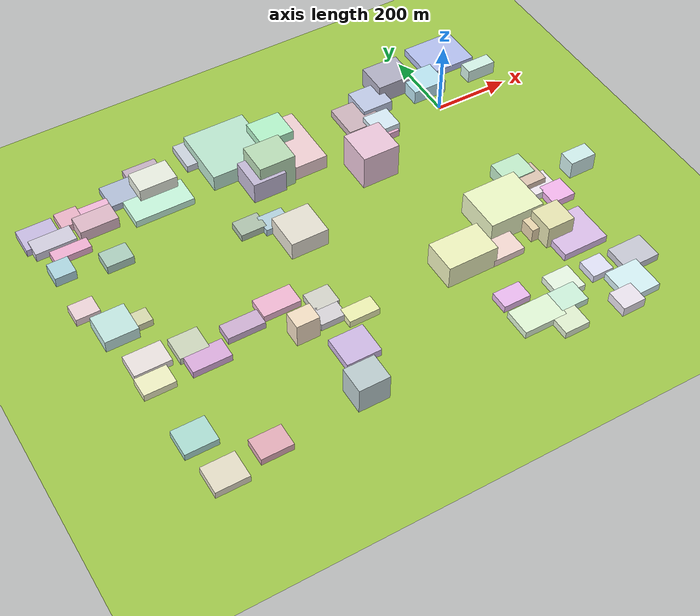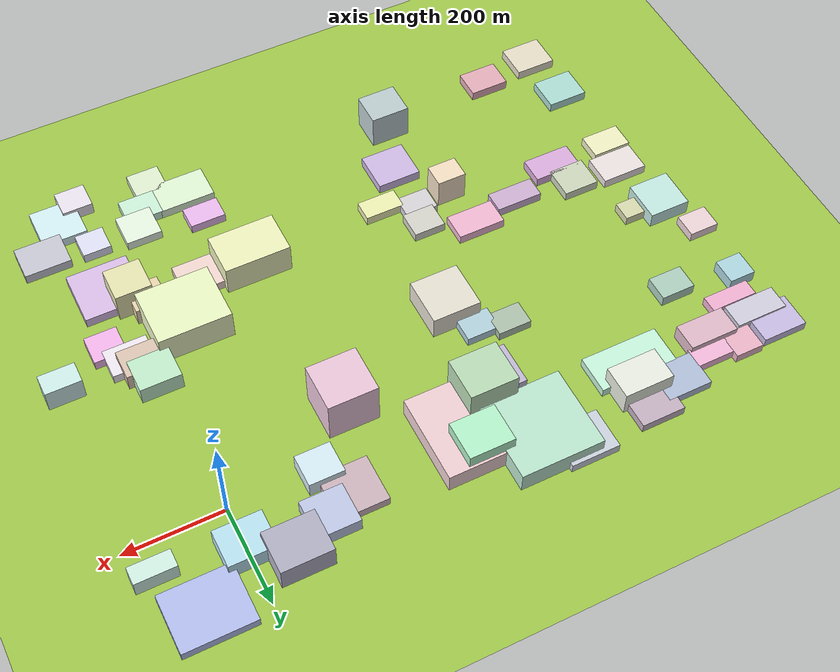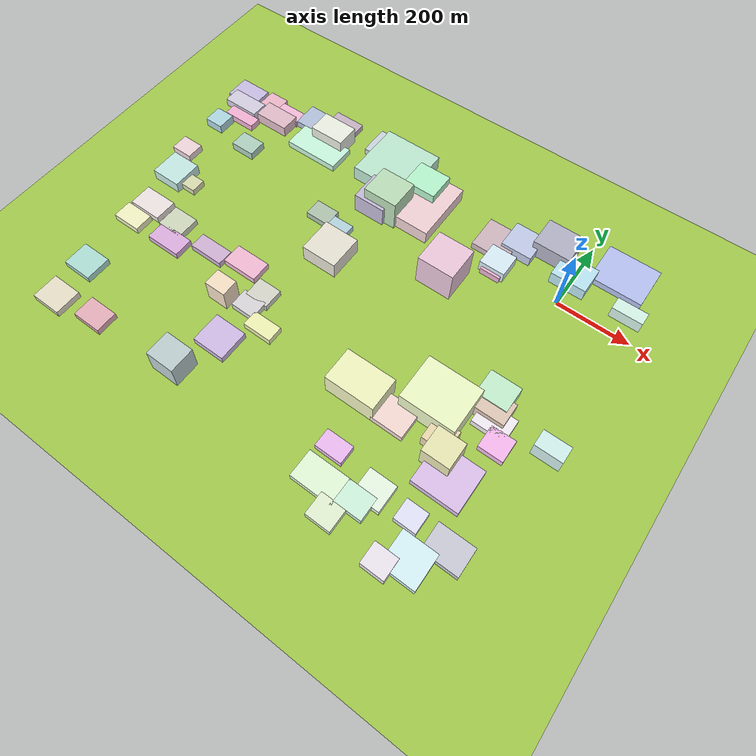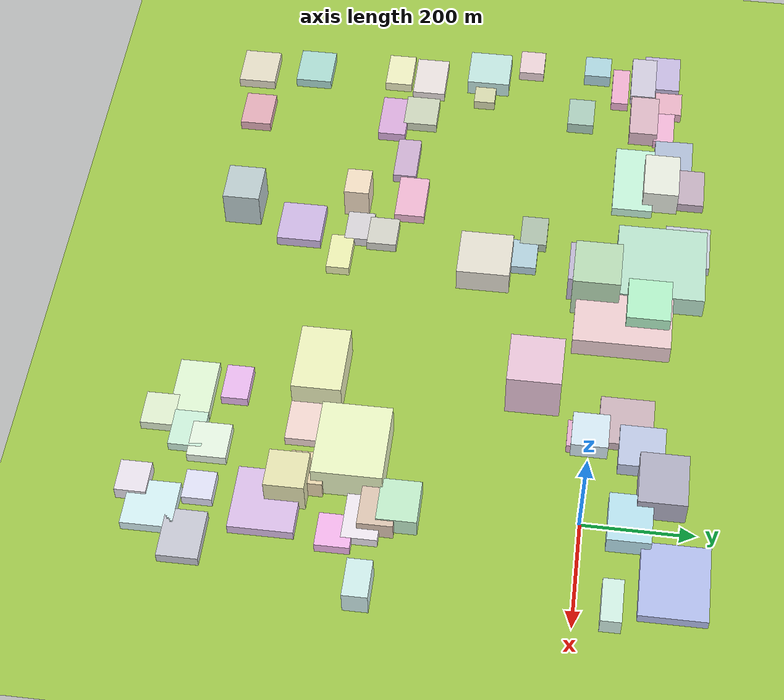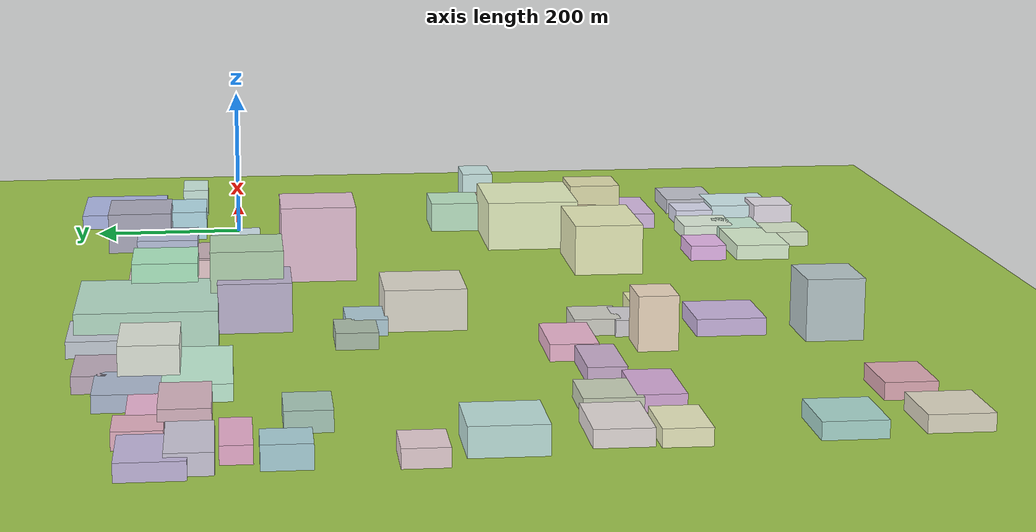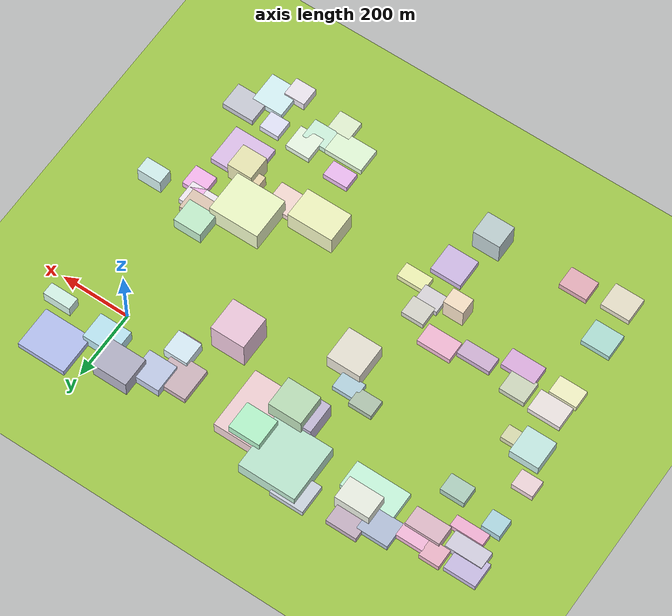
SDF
<sdf version="1.9">
 <world name="city_map">
  <model name="ground_plane">
   <static>1</static>
   <link name="link">
    <collision name="collision">
     <geometry><plane><normal>0 0 1</normal><size>11000 11000</size></plane></geometry>
    </collision>
    <visual name="visual">
     <geometry><plane><normal>0 0 1</normal><size>11000 11000</size></plane></geometry>
     <material>
      <ambient>0.551 0.712 0.210 1</ambient>
      <diffuse>0.651 0.812 0.310 1</diffuse>
      <specular>0.1 0.1 0.05 1</specular>
     </material>
    </visual>
   </link>
  </model>
  <model name="building_310255113">
   <static>1</static>
   <pose>-461.33310733339897 48.08937970377485 20.81820636374468 0 0 0</pose>
   <link name="link">
    <collision name="collision">
     <geometry><box><size>190.84393840883806 179.67570000018185 41.63641272748936</size></box></geometry>
    </collision>
    <visual name="visual">
     <cast_shadows>false</cast_shadows>
     <geometry><box><size>190.84393840883806 179.67570000018185 41.63641272748936</size></box></geometry>
     <material>
      <ambient>0.865 0.741 0.752 1</ambient>
      <diffuse>0.965 0.841 0.852 1</diffuse>
      <specular>0.289 0.252 0.256 1</specular>
      <emissive>0.01 0.01 0.01 1</emissive>
     </material>
    </visual>
   </link>
  </model>
  <model name="building_830032669">
   <static>1</static>
   <pose>-563.875092208699 111.61572994521934 22.5 0 0 0</pose>
   <link name="link">
    <collision name="collision">
     <geometry><box><size>167.39205939384846 167.0105999996636 45.0</size></box></geometry>
    </collision>
    <visual name="visual">
     <cast_shadows>false</cast_shadows>
     <geometry><box><size>167.39205939384846 167.0105999996636 45.0</size></box></geometry>
     <material>
      <ambient>0.657 0.827 0.734 1</ambient>
      <diffuse>0.757 0.927 0.834 1</diffuse>
      <specular>0.227 0.278 0.250 1</specular>
      <emissive>0.01 0.01 0.01 1</emissive>
     </material>
    </visual>
   </link>
  </model>
  <model name="building_831326746">
   <static>1</static>
   <pose>-85.62859501817226 -405.5844760689767 33.0 0 0 0</pose>
   <link name="link">
    <collision name="collision">
     <geometry><box><size>147.73989317804788 124.98599999992166 66.0</size></box></geometry>
    </collision>
    <visual name="visual">
     <cast_shadows>false</cast_shadows>
     <geometry><box><size>147.73989317804788 124.98599999992166 66.0</size></box></geometry>
     <material>
      <ambient>0.852 0.898 0.696 1</ambient>
      <diffuse>0.952 0.998 0.796 1</diffuse>
      <specular>0.286 0.299 0.239 1</specular>
      <emissive>0.01 0.01 0.01 1</emissive>
     </material>
    </visual>
   </link>
  </model>
  <model name="building_826001463">
   <static>1</static>
   <pose>103.41681634318033 165.5859250132687 10.0 0 0 0</pose>
   <link name="link">
    <collision name="collision">
     <geometry><box><size>141.90713042939495 118.44810000002326 20</size></box></geometry>
    </collision>
    <visual name="visual">
     <cast_shadows>false</cast_shadows>
     <geometry><box><size>141.90713042939495 118.44810000002326 20</size></box></geometry>
     <material>
      <ambient>0.629 0.673 0.862 1</ambient>
      <diffuse>0.729 0.773 0.962 1</diffuse>
      <specular>0.219 0.232 0.289 1</specular>
      <emissive>0.01 0.01 0.01 1</emissive>
     </material>
    </visual>
   </link>
  </model>
  <model name="building_572207154">
   <static>1</static>
   <pose>24.76424212845897 -541.927155750933 10.5 0 0 0</pose>
   <link name="link">
    <collision name="collision">
     <geometry><box><size>122.96579999997448 114.90847005104308 21.0</size></box></geometry>
    </collision>
    <visual name="visual">
     <cast_shadows>false</cast_shadows>
     <geometry><box><size>122.96579999997448 114.90847005104308 21.0</size></box></geometry>
     <material>
      <ambient>0.789 0.675 0.845 1</ambient>
      <diffuse>0.889 0.775 0.945 1</diffuse>
      <specular>0.267 0.233 0.283 1</specular>
      <emissive>0.01 0.01 0.01 1</emissive>
     </material>
    </visual>
   </link>
  </model>
  <model name="building_409656242">
   <static>1</static>
   <pose>-789.0368998520923 50.53155328135231 10.0 0 0 0</pose>
   <link name="link">
    <collision name="collision">
     <geometry><box><size>158.4310028349322 77.289300000146 20</size></box></geometry>
    </collision>
    <visual name="visual">
     <cast_shadows>false</cast_shadows>
     <geometry><box><size>158.4310028349322 77.289300000146 20</size></box></geometry>
     <material>
      <ambient>0.704 0.891 0.786 1</ambient>
      <diffuse>0.804 0.991 0.886 1</diffuse>
      <specular>0.241 0.297 0.266 1</specular>
      <emissive>0.01 0.01 0.01 1</emissive>
     </material>
    </visual>
   </link>
  </model>
  <model name="building_247763045">
   <static>1</static>
   <pose>-253.7836160858949 -485.51263210774755 33.0 0 0 0</pose>
   <link name="link">
    <collision name="collision">
     <geometry><box><size>134.8333371826121 90.20969999970418 66.0</size></box></geometry>
    </collision>
    <visual name="visual">
     <cast_shadows>false</cast_shadows>
     <geometry><box><size>134.8333371826121 90.20969999970418 66.0</size></box></geometry>
     <material>
      <ambient>0.864 0.881 0.669 1</ambient>
      <diffuse>0.964 0.981 0.769 1</diffuse>
      <specular>0.289 0.294 0.231 1</specular>
      <emissive>0.01 0.01 0.01 1</emissive>
     </material>
    </visual>
   </link>
  </model>
  <model name="building_324186680">
   <static>1</static>
   <pose>-487.29843607949505 20.03658448285952 10.0 0 0 0</pose>
   <link name="link">
    <collision name="collision">
     <geometry><box><size>105.5498999999358 95.04438780565705 20</size></box></geometry>
    </collision>
    <visual name="visual">
     <cast_shadows>false</cast_shadows>
     <geometry><box><size>105.5498999999358 95.04438780565705 20</size></box></geometry>
     <material>
      <ambient>0.874 0.720 0.634 1</ambient>
      <diffuse>0.974 0.820 0.734 1</diffuse>
      <specular>0.292 0.246 0.220 1</specular>
      <emissive>0.01 0.01 0.01 1</emissive>
     </material>
    </visual>
   </link>
  </model>
  <model name="building_927267877">
   <static>1</static>
   <pose>-542.9238202386758 -218.87005520669763 25.5 0 0 0</pose>
   <link name="link">
    <collision name="collision">
     <geometry><box><size>99.53386910600624 99.51150000035369 51.0</size></box></geometry>
    </collision>
    <visual name="visual">
     <cast_shadows>false</cast_shadows>
     <geometry><box><size>99.53386910600624 99.51150000035369 51.0</size></box></geometry>
     <material>
      <ambient>0.823 0.804 0.750 1</ambient>
      <diffuse>0.923 0.904 0.850 1</diffuse>
      <specular>0.277 0.271 0.255 1</specular>
      <emissive>0.01 0.01 0.01 1</emissive>
     </material>
    </visual>
   </link>
  </model>
  <model name="building_42128750">
   <static>1</static>
   <pose>-272.94901131806927 -102.09523266390494 49.0 0 0 0</pose>
   <link name="link">
    <collision name="collision">
     <geometry><box><size>100.25520000036892 97.66743805694884 98.0</size></box></geometry>
    </collision>
    <visual name="visual">
     <cast_shadows>false</cast_shadows>
     <geometry><box><size>100.25520000036892 97.66743805694884 98.0</size></box></geometry>
     <material>
      <ambient>0.849 0.701 0.784 1</ambient>
      <diffuse>0.949 0.801 0.884 1</diffuse>
      <specular>0.285 0.240 0.265 1</specular>
      <emissive>0.01 0.01 0.01 1</emissive>
     </material>
    </visual>
   </link>
  </model>
  <model name="building_727431240">
   <static>1</static>
   <pose>-212.099609196562 67.79243331679145 10.0 0 0 0</pose>
   <link name="link">
    <collision name="collision">
     <geometry><box><size>99.02163897034677 96.65880000014226 20</size></box></geometry>
    </collision>
    <visual name="visual">
     <cast_shadows>false</cast_shadows>
     <geometry><box><size>99.02163897034677 96.65880000014226 20</size></box></geometry>
     <material>
      <ambient>0.730 0.632 0.665 1</ambient>
      <diffuse>0.830 0.732 0.765 1</diffuse>
      <specular>0.249 0.220 0.230 1</specular>
      <emissive>0.01 0.01 0.01 1</emissive>
     </material>
    </visual>
   </link>
  </model>
  <model name="building_868437471">
   <static>1</static>
   <pose>-76.80253300123762 136.83698215875955 27.0 0 0 0</pose>
   <link name="link">
    <collision name="collision">
     <geometry><box><size>102.16439999980764 85.67461996298209 54.0</size></box></geometry>
    </collision>
    <visual name="visual">
     <cast_shadows>false</cast_shadows>
     <geometry><box><size>102.16439999980764 85.67461996298209 54.0</size></box></geometry>
     <material>
      <ambient>0.619 0.613 0.692 1</ambient>
      <diffuse>0.719 0.713 0.792 1</diffuse>
      <specular>0.216 0.214 0.237 1</specular>
      <emissive>0.01 0.01 0.01 1</emissive>
     </material>
    </visual>
   </link>
  </model>
  <model name="building_151764183">
   <static>1</static>
   <pose>-509.3020442650048 -6.692822635441386 47.251521305206246 0 0 0</pose>
   <link name="link">
    <collision name="collision">
     <geometry><box><size>97.51349999987724 87.89884286312922 94.50304261041249</size></box></geometry>
    </collision>
    <visual name="visual">
     <cast_shadows>false</cast_shadows>
     <geometry><box><size>97.51349999987724 87.89884286312922 94.50304261041249</size></box></geometry>
     <material>
      <ambient>0.652 0.790 0.642 1</ambient>
      <diffuse>0.752 0.890 0.742 1</diffuse>
      <specular>0.226 0.267 0.223 1</specular>
      <emissive>0.01 0.01 0.01 1</emissive>
     </material>
    </visual>
   </link>
  </model>
  <model name="building_926725313">
   <static>1</static>
   <pose>-627.9555800479404 160.8694068756089 10.0 0 0 0</pose>
   <link name="link">
    <collision name="collision">
     <geometry><box><size>98.16200351025695 84.49319999994032 20</size></box></geometry>
    </collision>
    <visual name="visual">
     <cast_shadows>false</cast_shadows>
     <geometry><box><size>98.16200351025695 84.49319999994032 20</size></box></geometry>
     <material>
      <ambient>0.722 0.753 0.795 1</ambient>
      <diffuse>0.822 0.853 0.895 1</diffuse>
      <specular>0.247 0.256 0.269 1</specular>
      <emissive>0.01 0.01 0.01 1</emissive>
     </material>
    </visual>
   </link>
  </model>
  <model name="building_900639131">
   <static>1</static>
   <pose>54.772469419910614 -737.783470360195 10.5 0 0 0</pose>
   <link name="link">
    <collision name="collision">
     <geometry><box><size>90.55379999978186 90.34393543184758 21.0</size></box></geometry>
    </collision>
    <visual name="visual">
     <cast_shadows>false</cast_shadows>
     <geometry><box><size>90.55379999978186 90.34393543184758 21.0</size></box></geometry>
     <material>
      <ambient>0.765 0.874 0.890 1</ambient>
      <diffuse>0.865 0.974 0.990 1</diffuse>
      <specular>0.259 0.292 0.297 1</specular>
      <emissive>0.01 0.01 0.01 1</emissive>
     </material>
    </visual>
   </link>
  </model>
  <model name="building_638269344">
   <static>1</static>
   <pose>-196.89341133365406 -709.1845629007663 10.0 0 0 0</pose>
   <link name="link">
    <collision name="collision">
     <geometry><box><size>113.24219999991669 72.13821345686614 20</size></box></geometry>
    </collision>
    <visual name="visual">
     <cast_shadows>false</cast_shadows>
     <geometry><box><size>113.24219999991669 72.13821345686614 20</size></box></geometry>
     <material>
      <ambient>0.809 0.900 0.766 1</ambient>
      <diffuse>0.909 1.000 0.866 1</diffuse>
      <specular>0.273 0.300 0.260 1</specular>
      <emissive>0.01 0.01 0.01 1</emissive>
     </material>
    </visual>
   </link>
  </model>
  <model name="building_330627720">
   <static>1</static>
   <pose>-536.5100140623344 -15.391848845883088 30.181403811154325 0 0 0</pose>
   <link name="link">
    <collision name="collision">
     <geometry><box><size>89.65469999952802 88.99994104078748 60.36280762230865</size></box></geometry>
    </collision>
    <visual name="visual">
     <cast_shadows>false</cast_shadows>
     <geometry><box><size>89.65469999952802 88.99994104078748 60.36280762230865</size></box></geometry>
     <material>
      <ambient>0.686 0.650 0.764 1</ambient>
      <diffuse>0.786 0.750 0.864 1</diffuse>
      <specular>0.236 0.225 0.259 1</specular>
      <emissive>0.01 0.01 0.01 1</emissive>
     </material>
    </visual>
   </link>
  </model>
  <model name="building_749918745">
   <static>1</static>
   <pose>-604.6680784892696 -579.0358432580188 10.5 0 0 0</pose>
   <link name="link">
    <collision name="collision">
     <geometry><box><size>90.15199604222006 84.01589999988346 21.0</size></box></geometry>
    </collision>
    <visual name="visual">
     <cast_shadows>false</cast_shadows>
     <geometry><box><size>90.15199604222006 84.01589999988346 21.0</size></box></geometry>
     <material>
      <ambient>0.735 0.649 0.825 1</ambient>
      <diffuse>0.835 0.749 0.925 1</diffuse>
      <specular>0.250 0.225 0.278 1</specular>
      <emissive>0.01 0.01 0.01 1</emissive>
     </material>
    </visual>
   </link>
  </model>
  <model name="building_212476516">
   <static>1</static>
   <pose>-453.99825614972815 93.06925202050442 34.386655722311474 0 0 0</pose>
   <link name="link">
    <collision name="collision">
     <geometry><box><size>91.60830000027431 80.50151382848243 68.77331144462295</size></box></geometry>
    </collision>
    <visual name="visual">
     <cast_shadows>false</cast_shadows>
     <geometry><box><size>91.60830000027431 80.50151382848243 68.77331144462295</size></box></geometry>
     <material>
      <ambient>0.627 0.881 0.715 1</ambient>
      <diffuse>0.727 0.981 0.815 1</diffuse>
      <specular>0.218 0.294 0.244 1</specular>
      <emissive>0.01 0.01 0.01 1</emissive>
     </material>
    </visual>
   </link>
  </model>
  <model name="building_536955946">
   <static>1</static>
   <pose>-0.9066491566573157 84.41103401454548 19.5 0 0 0</pose>
   <link name="link">
    <collision name="collision">
     <geometry><box><size>94.72582156930194 76.7120999997104 39.0</size></box></geometry>
    </collision>
    <visual name="visual">
     <cast_shadows>false</cast_shadows>
     <geometry><box><size>94.72582156930194 76.7120999997104 39.0</size></box></geometry>
     <material>
      <ambient>0.650 0.821 0.870 1</ambient>
      <diffuse>0.750 0.921 0.970 1</diffuse>
      <specular>0.225 0.276 0.291 1</specular>
      <emissive>0.01 0.01 0.01 1</emissive>
     </material>
    </visual>
   </link>
  </model>
  <model name="building_806991595">
   <static>1</static>
   <pose>-1047.8542958990786 -258.7805313982361 16.5 0 0 0</pose>
   <link name="link">
    <collision name="collision">
     <geometry><box><size>85.14770083279826 83.9715000001533 33.0</size></box></geometry>
    </collision>
    <visual name="visual">
     <cast_shadows>false</cast_shadows>
     <geometry><box><size>85.14770083279826 83.9715000001533 33.0</size></box></geometry>
     <material>
      <ambient>0.689 0.836 0.811 1</ambient>
      <diffuse>0.789 0.936 0.911 1</diffuse>
      <specular>0.237 0.281 0.273 1</specular>
      <emissive>0.01 0.01 0.01 1</emissive>
     </material>
    </visual>
   </link>
  </model>
  <model name="building_805999350">
   <static>1</static>
   <pose>-154.32336073700395 97.54358203910984 15.505901711214168 0 0 0</pose>
   <link name="link">
    <collision name="collision">
     <geometry><box><size>84.41549999982101 81.28488659549345 31.011803422428336</size></box></geometry>
    </collision>
    <visual name="visual">
     <cast_shadows>false</cast_shadows>
     <geometry><box><size>84.41549999982101 81.28488659549345 31.011803422428336</size></box></geometry>
     <material>
      <ambient>0.675 0.716 0.830 1</ambient>
      <diffuse>0.775 0.816 0.930 1</diffuse>
      <specular>0.233 0.245 0.279 1</specular>
      <emissive>0.01 0.01 0.01 1</emissive>
     </material>
    </visual>
   </link>
  </model>
  <model name="building_367976906">
   <static>1</static>
   <pose>-777.0076947811745 103.09508902568075 26.802655937591688 0 0 0</pose>
   <link name="link">
    <collision name="collision">
     <geometry><box><size>101.1352621487176 67.51019999943964 53.605311875183375</size></box></geometry>
    </collision>
    <visual name="visual">
     <cast_shadows>false</cast_shadows>
     <geometry><box><size>101.1352621487176 67.51019999943964 53.605311875183375</size></box></geometry>
     <material>
      <ambient>0.837 0.859 0.808 1</ambient>
      <diffuse>0.937 0.959 0.908 1</diffuse>
      <specular>0.281 0.288 0.272 1</specular>
      <emissive>0.01 0.01 0.01 1</emissive>
     </material>
    </visual>
   </link>
  </model>
  <model name="building_443851462">
   <static>1</static>
   <pose>108.78540764651984 -672.1587906914414 10.5 0 0 0</pose>
   <link name="link">
    <collision name="collision">
     <geometry><box><size>94.08360000001892 72.36747031099227 21.0</size></box></geometry>
    </collision>
    <visual name="visual">
     <cast_shadows>false</cast_shadows>
     <geometry><box><size>94.08360000001892 72.36747031099227 21.0</size></box></geometry>
     <material>
      <ambient>0.709 0.714 0.759 1</ambient>
      <diffuse>0.809 0.814 0.859 1</diffuse>
      <specular>0.243 0.244 0.258 1</specular>
      <emissive>0.01 0.01 0.01 1</emissive>
     </material>
    </visual>
   </link>
  </model>
  <model name="building_707020756">
   <static>1</static>
   <pose>-853.6411103509627 124.98150904965779 10.0 0 0 0</pose>
   <link name="link">
    <collision name="collision">
     <geometry><box><size>90.40950000046166 73.7940677544661 20</size></box></geometry>
    </collision>
    <visual name="visual">
     <cast_shadows>false</cast_shadows>
     <geometry><box><size>90.40950000046166 73.7940677544661 20</size></box></geometry>
     <material>
      <ambient>0.620 0.675 0.772 1</ambient>
      <diffuse>0.720 0.775 0.872 1</diffuse>
      <specular>0.216 0.232 0.262 1</specular>
      <emissive>0.01 0.01 0.01 1</emissive>
     </material>
    </visual>
   </link>
  </model>
  <model name="building_528343313">
   <static>1</static>
   <pose>-148.84753043338213 -493.02797949999956 10.0 0 0 0</pose>
   <link name="link">
    <collision name="collision">
     <geometry><box><size>86.54669999948794 75.46537365535708 20</size></box></geometry>
    </collision>
    <visual name="visual">
     <cast_shadows>false</cast_shadows>
     <geometry><box><size>86.54669999948794 75.46537365535708 20</size></box></geometry>
     <material>
      <ambient>0.884 0.777 0.751 1</ambient>
      <diffuse>0.984 0.877 0.851 1</diffuse>
      <specular>0.295 0.263 0.255 1</specular>
      <emissive>0.01 0.01 0.01 1</emissive>
     </material>
    </visual>
   </link>
  </model>
  <model name="building_158698063">
   <static>1</static>
   <pose>-1087.0271196272233 93.05089789423424 10.0 0 0 0</pose>
   <link name="link">
    <collision name="collision">
     <geometry><box><size>91.57791269260626 71.25090000056389 20</size></box></geometry>
    </collision>
    <visual name="visual">
     <cast_shadows>false</cast_shadows>
     <geometry><box><size>91.57791269260626 71.25090000056389 20</size></box></geometry>
     <material>
      <ambient>0.708 0.660 0.817 1</ambient>
      <diffuse>0.808 0.760 0.917 1</diffuse>
      <specular>0.242 0.228 0.275 1</specular>
      <emissive>0.01 0.01 0.01 1</emissive>
     </material>
    </visual>
   </link>
  </model>
  <model name="building_411804197">
   <static>1</static>
   <pose>-1011.8937557497862 -730.8570718522863 10.0 0 0 0</pose>
   <link name="link">
    <collision name="collision">
     <geometry><box><size>84.32670000036069 72.57090774978323 20</size></box></geometry>
    </collision>
    <visual name="visual">
     <cast_shadows>false</cast_shadows>
     <geometry><box><size>84.32670000036069 72.57090774978323 20</size></box></geometry>
     <material>
      <ambient>0.823 0.797 0.709 1</ambient>
      <diffuse>0.923 0.897 0.809 1</diffuse>
      <specular>0.277 0.269 0.243 1</specular>
      <emissive>0.01 0.01 0.01 1</emissive>
     </material>
    </visual>
   </link>
  </model>
  <model name="building_180159627">
   <static>1</static>
   <pose>-1023.3967926735417 -377.64138034346996 10.0 0 0 0</pose>
   <link name="link">
    <collision name="collision">
     <geometry><box><size>94.5659320249993 63.85830000014181 20</size></box></geometry>
    </collision>
    <visual name="visual">
     <cast_shadows>false</cast_shadows>
     <geometry><box><size>94.5659320249993 63.85830000014181 20</size></box></geometry>
     <material>
      <ambient>0.848 0.814 0.804 1</ambient>
      <diffuse>0.948 0.914 0.904 1</diffuse>
      <specular>0.284 0.274 0.271 1</specular>
      <emissive>0.01 0.01 0.01 1</emissive>
     </material>
    </visual>
   </link>
  </model>
  <model name="building_829213542">
   <static>1</static>
   <pose>-779.933718790472 154.0225304965392 10.0 0 0 0</pose>
   <link name="link">
    <collision name="collision">
     <geometry><box><size>88.86660000057134 67.21542784879301 20</size></box></geometry>
    </collision>
    <visual name="visual">
     <cast_shadows>false</cast_shadows>
     <geometry><box><size>88.86660000057134 67.21542784879301 20</size></box></geometry>
     <material>
      <ambient>0.696 0.619 0.686 1</ambient>
      <diffuse>0.796 0.719 0.786 1</diffuse>
      <specular>0.239 0.216 0.236 1</specular>
      <emissive>0.01 0.01 0.01 1</emissive>
     </material>
    </visual>
   </link>
  </model>
  <model name="building_553548670">
   <static>1</static>
   <pose>-1025.442116240658 -615.9029165474191 10.0 0 0 0</pose>
   <link name="link">
    <collision name="collision">
     <geometry><box><size>83.43869999944786 70.96849718220174 20</size></box></geometry>
    </collision>
    <visual name="visual">
     <cast_shadows>false</cast_shadows>
     <geometry><box><size>83.43869999944786 70.96849718220174 20</size></box></geometry>
     <material>
      <ambient>0.601 0.794 0.755 1</ambient>
      <diffuse>0.701 0.894 0.855 1</diffuse>
      <specular>0.210 0.268 0.256 1</specular>
      <emissive>0.01 0.01 0.01 1</emissive>
     </material>
    </visual>
   </link>
  </model>
  <model name="building_155350290">
   <static>1</static>
   <pose>11.661874532823045 -311.3215598132463 20.13974663924326 0 0 0</pose>
   <link name="link">
    <collision name="collision">
     <geometry><box><size>82.65619356530765 71.13990000005543 40.27949327848652</size></box></geometry>
    </collision>
    <visual name="visual">
     <cast_shadows>false</cast_shadows>
     <geometry><box><size>82.65619356530765 71.13990000005543 40.27949327848652</size></box></geometry>
     <material>
      <ambient>0.682 0.856 0.720 1</ambient>
      <diffuse>0.782 0.956 0.820 1</diffuse>
      <specular>0.235 0.287 0.246 1</specular>
      <emissive>0.01 0.01 0.01 1</emissive>
     </material>
    </visual>
   </link>
  </model>
  <model name="building_597563582">
   <static>1</static>
   <pose>-693.7341038847119 -376.3714757586339 10.0 0 0 0</pose>
   <link name="link">
    <collision name="collision">
     <geometry><box><size>98.15730000030243 57.050077320519065 20</size></box></geometry>
    </collision>
    <visual name="visual">
     <cast_shadows>false</cast_shadows>
     <geometry><box><size>98.15730000030243 57.050077320519065 20</size></box></geometry>
     <material>
      <ambient>0.873 0.647 0.756 1</ambient>
      <diffuse>0.973 0.747 0.856 1</diffuse>
      <specular>0.292 0.224 0.257 1</specular>
      <emissive>0.01 0.01 0.01 1</emissive>
     </material>
    </visual>
   </link>
  </model>
  <model name="building_613739617">
   <static>1</static>
   <pose>-644.8954710748684 -695.1346253798692 37.44542790642835 0 0 0</pose>
   <link name="link">
    <collision name="collision">
     <geometry><box><size>79.886285202791 69.5859000000354 74.8908558128567</size></box></geometry>
    </collision>
    <visual name="visual">
     <cast_shadows>false</cast_shadows>
     <geometry><box><size>79.886285202791 69.5859000000354 74.8908558128567</size></box></geometry>
     <material>
      <ambient>0.659 0.728 0.736 1</ambient>
      <diffuse>0.759 0.828 0.836 1</diffuse>
      <specular>0.228 0.248 0.251 1</specular>
      <emissive>0.01 0.01 0.01 1</emissive>
     </material>
    </visual>
   </link>
  </model>
  <model name="building_859549984">
   <static>1</static>
   <pose>40.28997862613702 -371.55960309042507 10.5 0 0 0</pose>
   <link name="link">
    <collision name="collision">
     <geometry><box><size>87.72984701391782 63.05909999947801 21.0</size></box></geometry>
    </collision>
    <visual name="visual">
     <cast_shadows>false</cast_shadows>
     <geometry><box><size>87.72984701391782 63.05909999947801 21.0</size></box></geometry>
     <material>
      <ambient>0.871 0.844 0.878 1</ambient>
      <diffuse>0.971 0.944 0.978 1</diffuse>
      <specular>0.291 0.283 0.293 1</specular>
      <emissive>0.01 0.01 0.01 1</emissive>
     </material>
    </visual>
   </link>
  </model>
  <model name="building_438443894">
   <static>1</static>
   <pose>-951.8241487966014 61.83549870830491 16.5 0 0 0</pose>
   <link name="link">
    <collision name="collision">
     <geometry><box><size>100.10912537223236 55.15589999939863 33.0</size></box></geometry>
    </collision>
    <visual name="visual">
     <cast_shadows>false</cast_shadows>
     <geometry><box><size>100.10912537223236 55.15589999939863 33.0</size></box></geometry>
     <material>
      <ambient>0.798 0.652 0.705 1</ambient>
      <diffuse>0.898 0.752 0.805 1</diffuse>
      <specular>0.269 0.226 0.241 1</specular>
      <emissive>0.01 0.01 0.01 1</emissive>
     </material>
    </visual>
   </link>
  </model>
  <model name="building_300838436">
   <static>1</static>
   <pose>-904.2246582252362 -438.2446880781365 10.0 0 0 0</pose>
   <link name="link">
    <collision name="collision">
     <geometry><box><size>98.86963678876461 54.43440000043154 20</size></box></geometry>
    </collision>
    <visual name="visual">
     <cast_shadows>false</cast_shadows>
     <geometry><box><size>98.86963678876461 54.43440000043154 20</size></box></geometry>
     <material>
      <ambient>0.786 0.604 0.798 1</ambient>
      <diffuse>0.886 0.704 0.898 1</diffuse>
      <specular>0.266 0.211 0.270 1</specular>
      <emissive>0.01 0.01 0.01 1</emissive>
     </material>
    </visual>
   </link>
  </model>
  <model name="building_558751781">
   <static>1</static>
   <pose>-1066.5971102368824 56.03570215058289 12.0 0 0 0</pose>
   <link name="link">
    <collision name="collision">
     <geometry><box><size>106.65388553740765 49.41720000016403 24.0</size></box></geometry>
    </collision>
    <visual name="visual">
     <cast_shadows>false</cast_shadows>
     <geometry><box><size>106.65388553740765 49.41720000016403 24.0</size></box></geometry>
     <material>
      <ambient>0.748 0.733 0.801 1</ambient>
      <diffuse>0.848 0.833 0.901 1</diffuse>
      <specular>0.254 0.250 0.270 1</specular>
      <emissive>0.01 0.01 0.01 1</emissive>
     </material>
    </visual>
   </link>
  </model>
  <model name="building_991819217">
   <static>1</static>
   <pose>-12.682939135116328 -509.0245377086926 33.0 0 0 0</pose>
   <link name="link">
    <collision name="collision">
     <geometry><box><size>73.37822171651821 71.19539999991531 66.0</size></box></geometry>
    </collision>
    <visual name="visual">
     <cast_shadows>false</cast_shadows>
     <geometry><box><size>73.37822171651821 71.19539999991531 66.0</size></box></geometry>
     <material>
      <ambient>0.833 0.826 0.622 1</ambient>
      <diffuse>0.933 0.926 0.722 1</diffuse>
      <specular>0.280 0.278 0.217 1</specular>
      <emissive>0.01 0.01 0.01 1</emissive>
     </material>
    </visual>
   </link>
  </model>
  <model name="building_831887176">
   <static>1</static>
   <pose>23.157802324251435 -346.75729403220026 18.714300695400805 0 0 0</pose>
   <link name="link">
    <collision name="collision">
     <geometry><box><size>81.65028322449135 62.62619999994001 37.42860139080161</size></box></geometry>
    </collision>
    <visual name="visual">
     <cast_shadows>false</cast_shadows>
     <geometry><box><size>81.65028322449135 62.62619999994001 37.42860139080161</size></box></geometry>
     <material>
      <ambient>0.798 0.703 0.628 1</ambient>
      <diffuse>0.898 0.803 0.728 1</diffuse>
      <specular>0.269 0.241 0.218 1</specular>
      <emissive>0.01 0.01 0.01 1</emissive>
     </material>
    </visual>
   </link>
  </model>
  <model name="building_341815386">
   <static>1</static>
   <pose>-86.54947275563175 -661.3359960281622 10.0 0 0 0</pose>
   <link name="link">
    <collision name="collision">
     <geometry><box><size>72.10559999951016 70.26652079732213 20</size></box></geometry>
    </collision>
    <visual name="visual">
     <cast_shadows>false</cast_shadows>
     <geometry><box><size>72.10559999951016 70.26652079732213 20</size></box></geometry>
     <material>
      <ambient>0.836 0.897 0.821 1</ambient>
      <diffuse>0.936 0.997 0.921 1</diffuse>
      <specular>0.281 0.299 0.276 1</specular>
      <emissive>0.01 0.01 0.01 1</emissive>
     </material>
    </visual>
   </link>
  </model>
  <model name="building_782406743">
   <static>1</static>
   <pose>-924.7979258137439 -384.8817794683678 10.0 0 0 0</pose>
   <link name="link">
    <collision name="collision">
     <geometry><box><size>73.60592258399278 65.70089999959094 20</size></box></geometry>
    </collision>
    <visual name="visual">
     <cast_shadows>false</cast_shadows>
     <geometry><box><size>73.60592258399278 65.70089999959094 20</size></box></geometry>
     <material>
      <ambient>0.731 0.767 0.664 1</ambient>
      <diffuse>0.831 0.867 0.764 1</diffuse>
      <specular>0.249 0.260 0.229 1</specular>
      <emissive>0.01 0.01 0.01 1</emissive>
     </material>
    </visual>
   </link>
  </model>
  <model name="building_418363315">
   <static>1</static>
   <pose>-892.5686150682119 -713.5809606788156 10.0 0 0 0</pose>
   <link name="link">
    <collision name="collision">
     <geometry><box><size>80.88569999958395 59.51299800549823 20</size></box></geometry>
    </collision>
    <visual name="visual">
     <cast_shadows>false</cast_shadows>
     <geometry><box><size>80.88569999958395 59.51299800549823 20</size></box></geometry>
     <material>
      <ambient>0.818 0.604 0.650 1</ambient>
      <diffuse>0.918 0.704 0.750 1</diffuse>
      <specular>0.275 0.211 0.225 1</specular>
      <emissive>0.01 0.01 0.01 1</emissive>
     </material>
    </visual>
   </link>
  </model>
  <model name="building_748782867">
   <static>1</static>
   <pose>-176.6868253549277 5.233574547463862 17.40995322567374 0 0 0</pose>
   <link name="link">
    <collision name="collision">
     <geometry><box><size>70.40546339647499 65.84520000048855 34.81990645134748</size></box></geometry>
    </collision>
    <visual name="visual">
     <cast_shadows>false</cast_shadows>
     <geometry><box><size>70.40546339647499 65.84520000048855 34.81990645134748</size></box></geometry>
     <material>
      <ambient>0.768 0.850 0.890 1</ambient>
      <diffuse>0.868 0.950 0.990 1</diffuse>
      <specular>0.260 0.285 0.297 1</specular>
      <emissive>0.01 0.01 0.01 1</emissive>
     </material>
    </visual>
   </link>
  </model>
  <model name="building_487759051">
   <static>1</static>
   <pose>-106.66885201860558 -703.6810317811794 10.0 0 0 0</pose>
   <link name="link">
    <collision name="collision">
     <geometry><box><size>73.3710000001011 60.30991065719447 20</size></box></geometry>
    </collision>
    <visual name="visual">
     <cast_shadows>false</cast_shadows>
     <geometry><box><size>73.3710000001011 60.30991065719447 20</size></box></geometry>
     <material>
      <ambient>0.729 0.878 0.789 1</ambient>
      <diffuse>0.829 0.978 0.889 1</diffuse>
      <specular>0.249 0.293 0.267 1</specular>
      <emissive>0.01 0.01 0.01 1</emissive>
     </material>
    </visual>
   </link>
  </model>
  <model name="building_152120145">
   <static>1</static>
   <pose>-794.4385359635742 -398.09517625764863 10.0 0 0 0</pose>
   <link name="link">
    <collision name="collision">
     <geometry><box><size>96.40349999952491 44.858122927980915 20</size></box></geometry>
    </collision>
    <visual name="visual">
     <cast_shadows>false</cast_shadows>
     <geometry><box><size>96.40349999952491 44.858122927980915 20</size></box></geometry>
     <material>
      <ambient>0.736 0.619 0.755 1</ambient>
      <diffuse>0.836 0.719 0.855 1</diffuse>
      <specular>0.251 0.216 0.256 1</specular>
      <emissive>0.01 0.01 0.01 1</emissive>
     </material>
    </visual>
   </link>
  </model>
  <model name="building_209170445">
   <static>1</static>
   <pose>-1034.7172515634195 -441.6132172061252 10.0 0 0 0</pose>
   <link name="link">
    <collision name="collision">
     <geometry><box><size>80.4766104698972 53.168999999840594 20</size></box></geometry>
    </collision>
    <visual name="visual">
     <cast_shadows>false</cast_shadows>
     <geometry><box><size>80.4766104698972 53.168999999840594 20</size></box></geometry>
     <material>
      <ambient>0.869 0.871 0.691 1</ambient>
      <diffuse>0.969 0.971 0.791 1</diffuse>
      <specular>0.291 0.291 0.237 1</specular>
      <emissive>0.01 0.01 0.01 1</emissive>
     </material>
    </visual>
   </link>
  </model>
  <model name="building_751139523">
   <static>1</static>
   <pose>-36.7598870747014 -478.7284443083163 19.486142726036043 0 0 0</pose>
   <link name="link">
    <collision name="collision">
     <geometry><box><size>65.35680000030197 62.23224944045191 38.972285452072086</size></box></geometry>
    </collision>
    <visual name="visual">
     <cast_shadows>false</cast_shadows>
     <geometry><box><size>65.35680000030197 62.23224944045191 38.972285452072086</size></box></geometry>
     <material>
      <ambient>0.845 0.768 0.607 1</ambient>
      <diffuse>0.945 0.868 0.707 1</diffuse>
      <specular>0.284 0.261 0.212 1</specular>
      <emissive>0.01 0.01 0.01 1</emissive>
     </material>
    </visual>
   </link>
  </model>
  <model name="building_619327809">
   <static>1</static>
   <pose>72.33436420691585 -415.3341780527486 10.5 0 0 0</pose>
   <link name="link">
    <collision name="collision">
     <geometry><box><size>64.71719037705132 61.305300000277896 21.0</size></box></geometry>
    </collision>
    <visual name="visual">
     <cast_shadows>false</cast_shadows>
     <geometry><box><size>64.71719037705132 61.305300000277896 21.0</size></box></geometry>
     <material>
      <ambient>0.888 0.643 0.858 1</ambient>
      <diffuse>0.988 0.743 0.958 1</diffuse>
      <specular>0.296 0.223 0.287 1</specular>
      <emissive>0.01 0.01 0.01 1</emissive>
     </material>
    </visual>
   </link>
  </model>
  <model name="building_960584188">
   <static>1</static>
   <pose>-142.35575815451946 -761.7255556765109 10.0 0 0 0</pose>
   <link name="link">
    <collision name="collision">
     <geometry><box><size>66.51194659884618 59.35170000032031 20</size></box></geometry>
    </collision>
    <visual name="visual">
     <cast_shadows>false</cast_shadows>
     <geometry><box><size>66.51194659884618 59.35170000032031 20</size></box></geometry>
     <material>
      <ambient>0.810 0.873 0.746 1</ambient>
      <diffuse>0.910 0.973 0.846 1</diffuse>
      <specular>0.273 0.292 0.254 1</specular>
      <emissive>0.01 0.01 0.01 1</emissive>
     </material>
    </visual>
   </link>
  </model>
  <model name="building_8306658">
   <static>1</static>
   <pose>-600.4221717286428 -420.44615997415684 10.0 0 0 0</pose>
   <link name="link">
    <collision name="collision">
     <geometry><box><size>65.21046840311477 56.177100000290636 20</size></box></geometry>
    </collision>
    <visual name="visual">
     <cast_shadows>false</cast_shadows>
     <geometry><box><size>65.21046840311477 56.177100000290636 20</size></box></geometry>
     <material>
      <ambient>0.761 0.758 0.719 1</ambient>
      <diffuse>0.861 0.858 0.819 1</diffuse>
      <specular>0.258 0.258 0.246 1</specular>
      <emissive>0.01 0.01 0.01 1</emissive>
     </material>
    </visual>
   </link>
  </model>
  <model name="building_989170629">
   <static>1</static>
   <pose>-955.0287906445078 -64.32929765302733 12.0 0 0 0</pose>
   <link name="link">
    <collision name="collision">
     <geometry><box><size>69.94109999945408 51.737674132219404 24.0</size></box></geometry>
    </collision>
    <visual name="visual">
     <cast_shadows>false</cast_shadows>
     <geometry><box><size>69.94109999945408 51.737674132219404 24.0</size></box></geometry>
     <material>
      <ambient>0.601 0.737 0.671 1</ambient>
      <diffuse>0.701 0.837 0.771 1</diffuse>
      <specular>0.210 0.251 0.231 1</specular>
      <emissive>0.01 0.01 0.01 1</emissive>
     </material>
    </visual>
   </link>
  </model>
  <model name="building_27986949">
   <static>1</static>
   <pose>-540.6332003179459 -495.22995674534144 10.0 0 0 0</pose>
   <link name="link">
    <collision name="collision">
     <geometry><box><size>80.24189999994746 43.88618435369716 20</size></box></geometry>
    </collision>
    <visual name="visual">
     <cast_shadows>false</cast_shadows>
     <geometry><box><size>80.24189999994746 43.88618435369716 20</size></box></geometry>
     <material>
      <ambient>0.862 0.875 0.627 1</ambient>
      <diffuse>0.962 0.975 0.727 1</diffuse>
      <specular>0.289 0.293 0.218 1</specular>
      <emissive>0.01 0.01 0.01 1</emissive>
     </material>
    </visual>
   </link>
  </model>
  <model name="building_445131414">
   <static>1</static>
   <pose>-215.52335998859246 -634.462684145598 10.0 0 0 0</pose>
   <link name="link">
    <collision name="collision">
     <geometry><box><size>72.40736251938937 48.58469999989978 20</size></box></geometry>
    </collision>
    <visual name="visual">
     <cast_shadows>false</cast_shadows>
     <geometry><box><size>72.40736251938937 48.58469999989978 20</size></box></geometry>
     <material>
      <ambient>0.850 0.656 0.868 1</ambient>
      <diffuse>0.950 0.756 0.968 1</diffuse>
      <specular>0.285 0.227 0.290 1</specular>
      <emissive>0.01 0.01 0.01 1</emissive>
     </material>
    </visual>
   </link>
  </model>
  <model name="building_379974341">
   <static>1</static>
   <pose>-608.2364119997376 -466.67051279390876 10.0 0 0 0</pose>
   <link name="link">
    <collision name="collision">
     <geometry><box><size>66.54856790821805 51.67050000046913 20</size></box></geometry>
    </collision>
    <visual name="visual">
     <cast_shadows>false</cast_shadows>
     <geometry><box><size>66.54856790821805 51.67050000046913 20</size></box></geometry>
     <material>
      <ambient>0.771 0.760 0.778 1</ambient>
      <diffuse>0.871 0.860 0.878 1</diffuse>
      <specular>0.261 0.258 0.263 1</specular>
      <emissive>0.01 0.01 0.01 1</emissive>
     </material>
    </visual>
   </link>
  </model>
  <model name="building_211152474">
   <static>1</static>
   <pose>8.269196220985858 -777.2266919381996 13.5 0 0 0</pose>
   <link name="link">
    <collision name="collision">
     <geometry><box><size>61.46069999972781 55.85234522519277 27.0</size></box></geometry>
    </collision>
    <visual name="visual">
     <cast_shadows>false</cast_shadows>
     <geometry><box><size>61.46069999972781 55.85234522519277 27.0</size></box></geometry>
     <material>
      <ambient>0.846 0.822 0.864 1</ambient>
      <diffuse>0.946 0.922 0.964 1</diffuse>
      <specular>0.284 0.277 0.289 1</specular>
      <emissive>0.01 0.01 0.01 1</emissive>
     </material>
    </visual>
   </link>
  </model>
  <model name="building_834532946">
   <static>1</static>
   <pose>-635.080105787653 -132.3442016911597 10.0 0 0 0</pose>
   <link name="link">
    <collision name="collision">
     <geometry><box><size>67.82099999991686 50.23221660031712 20</size></box></geometry>
    </collision>
    <visual name="visual">
     <cast_shadows>false</cast_shadows>
     <geometry><box><size>67.82099999991686 50.23221660031712 20</size></box></geometry>
     <material>
      <ambient>0.608 0.686 0.603 1</ambient>
      <diffuse>0.708 0.786 0.703 1</diffuse>
      <specular>0.212 0.236 0.211 1</specular>
      <emissive>0.01 0.01 0.01 1</emissive>
     </material>
    </visual>
   </link>
  </model>
  <model name="building_109130934">
   <static>1</static>
   <pose>-575.6838298756041 -147.46863624439575 10.0 0 0 0</pose>
   <link name="link">
    <collision name="collision">
     <geometry><box><size>66.78714292667763 50.38289999961876 20</size></box></geometry>
    </collision>
    <visual name="visual">
     <cast_shadows>false</cast_shadows>
     <geometry><box><size>66.78714292667763 50.38289999961876 20</size></box></geometry>
     <material>
      <ambient>0.628 0.748 0.795 1</ambient>
      <diffuse>0.728 0.848 0.895 1</diffuse>
      <specular>0.218 0.254 0.269 1</specular>
      <emissive>0.01 0.01 0.01 1</emissive>
     </material>
    </visual>
   </link>
  </model>
  <model name="building_174657614">
   <static>1</static>
   <pose>-1040.1116801814146 10.249789487379047 10.0 0 0 0</pose>
   <link name="link">
    <collision name="collision">
     <geometry><box><size>95.42286788139315 33.69960000025429 20</size></box></geometry>
    </collision>
    <visual name="visual">
     <cast_shadows>false</cast_shadows>
     <geometry><box><size>95.42286788139315 33.69960000025429 20</size></box></geometry>
     <material>
      <ambient>0.870 0.619 0.752 1</ambient>
      <diffuse>0.970 0.719 0.852 1</diffuse>
      <specular>0.291 0.216 0.255 1</specular>
      <emissive>0.01 0.01 0.01 1</emissive>
     </material>
    </visual>
   </link>
  </model>
  <model name="building_319492960">
   <static>1</static>
   <pose>-1002.3641375745051 -262.7134104194732 10.0 0 0 0</pose>
   <link name="link">
    <collision name="collision">
     <geometry><box><size>77.41139999999547 41.4660475020798 20</size></box></geometry>
    </collision>
    <visual name="visual">
     <cast_shadows>false</cast_shadows>
     <geometry><box><size>77.41139999999547 41.4660475020798 20</size></box></geometry>
     <material>
      <ambient>0.774 0.782 0.608 1</ambient>
      <diffuse>0.874 0.882 0.708 1</diffuse>
      <specular>0.262 0.265 0.212 1</specular>
      <emissive>0.01 0.01 0.01 1</emissive>
     </material>
    </visual>
   </link>
  </model>
  <model name="building_807158259">
   <static>1</static>
   <pose>175.66074753047897 -360.1223640726353 25.0 0 0 0</pose>
   <link name="link">
    <collision name="collision">
     <geometry><box><size>71.82912920868729 44.41110000002624 50.0</size></box></geometry>
    </collision>
    <visual name="visual">
     <cast_shadows>false</cast_shadows>
     <geometry><box><size>71.82912920868729 44.41110000002624 50.0</size></box></geometry>
     <material>
      <ambient>0.742 0.864 0.853 1</ambient>
      <diffuse>0.842 0.964 0.953 1</diffuse>
      <specular>0.253 0.289 0.286 1</specular>
      <emissive>0.01 0.01 0.01 1</emissive>
     </material>
    </visual>
   </link>
  </model>
  <model name="building_291202362">
   <static>1</static>
   <pose>-936.2344102521199 102.70766499429607 10.0 0 0 0</pose>
   <link name="link">
    <collision name="collision">
     <geometry><box><size>77.41474949584315 40.04880000031363 20</size></box></geometry>
    </collision>
    <visual name="visual">
     <cast_shadows>false</cast_shadows>
     <geometry><box><size>77.41474949584315 40.04880000031363 20</size></box></geometry>
     <material>
      <ambient>0.882 0.649 0.780 1</ambient>
      <diffuse>0.982 0.749 0.880 1</diffuse>
      <specular>0.295 0.225 0.264 1</specular>
      <emissive>0.01 0.01 0.01 1</emissive>
     </material>
    </visual>
   </link>
  </model>
  <model name="building_289627606">
   <static>1</static>
   <pose>-1002.5335053958416 108.84083738378614 10.0 0 0 0</pose>
   <link name="link">
    <collision name="collision">
     <geometry><box><size>58.08467010730252 53.091299999721286 20</size></box></geometry>
    </collision>
    <visual name="visual">
     <cast_shadows>false</cast_shadows>
     <geometry><box><size>58.08467010730252 53.091299999721286 20</size></box></geometry>
     <material>
      <ambient>0.847 0.633 0.706 1</ambient>
      <diffuse>0.947 0.733 0.806 1</diffuse>
      <specular>0.284 0.220 0.242 1</specular>
      <emissive>0.01 0.01 0.01 1</emissive>
     </material>
    </visual>
   </link>
  </model>
  <model name="building_666579913">
   <static>1</static>
   <pose>8.732873822795773 -661.2719520281798 10.5 0 0 0</pose>
   <link name="link">
    <collision name="collision">
     <geometry><box><size>57.25380000025382 53.58151564640165 21.0</size></box></geometry>
    </collision>
    <visual name="visual">
     <cast_shadows>false</cast_shadows>
     <geometry><box><size>57.25380000025382 53.58151564640165 21.0</size></box></geometry>
     <material>
      <ambient>0.809 0.814 0.899 1</ambient>
      <diffuse>0.909 0.914 0.999 1</diffuse>
      <specular>0.273 0.274 0.300 1</specular>
      <emissive>0.01 0.01 0.01 1</emissive>
     </material>
    </visual>
   </link>
  </model>
  <model name="building_13048477">
   <static>1</static>
   <pose>-1086.9808169944117 -174.05693009599136 10.5 0 0 0</pose>
   <link name="link">
    <collision name="collision">
     <geometry><box><size>61.31639999961891 49.69904218448349 21.0</size></box></geometry>
    </collision>
    <visual name="visual">
     <cast_shadows>false</cast_shadows>
     <geometry><box><size>61.31639999961891 49.69904218448349 21.0</size></box></geometry>
     <material>
      <ambient>0.856 0.757 0.778 1</ambient>
      <diffuse>0.956 0.857 0.878 1</diffuse>
      <specular>0.287 0.257 0.263 1</specular>
      <emissive>0.01 0.01 0.01 1</emissive>
     </material>
    </visual>
   </link>
  </model>
  <model name="building_673412664">
   <static>1</static>
   <pose>160.34898429223955 63.14266849888387 18.591667845666077 0 0 0</pose>
   <link name="link">
    <collision name="collision">
     <geometry><box><size>80.9680662853959 36.041700000019716 37.183335691332154</size></box></geometry>
    </collision>
    <visual name="visual">
     <cast_shadows>false</cast_shadows>
     <geometry><box><size>80.9680662853959 36.041700000019716 37.183335691332154</size></box></geometry>
     <material>
      <ambient>0.753 0.877 0.830 1</ambient>
      <diffuse>0.853 0.977 0.930 1</diffuse>
      <specular>0.256 0.293 0.279 1</specular>
      <emissive>0.01 0.01 0.01 1</emissive>
     </material>
    </visual>
   </link>
  </model>
  <model name="building_689645971">
   <static>1</static>
   <pose>-680.9039067865255 -479.0832090737204 32.96743746215951 0 0 0</pose>
   <link name="link">
    <collision name="collision">
     <geometry><box><size>59.784600000647 47.74313470139653 65.93487492431902</size></box></geometry>
    </collision>
    <visual name="visual">
     <cast_shadows>false</cast_shadows>
     <geometry><box><size>59.784600000647 47.74313470139653 65.93487492431902</size></box></geometry>
     <material>
      <ambient>0.883 0.799 0.693 1</ambient>
      <diffuse>0.983 0.899 0.793 1</diffuse>
      <specular>0.295 0.270 0.238 1</specular>
      <emissive>0.01 0.01 0.01 1</emissive>
     </material>
    </visual>
   </link>
  </model>
  <model name="building_897961934">
   <static>1</static>
   <pose>-1084.1867992255818 -39.03351590736862 13.5 0 0 0</pose>
   <link name="link">
    <collision name="collision">
     <geometry><box><size>53.8717936647705 52.791600000162475 27.0</size></box></geometry>
    </collision>
    <visual name="visual">
     <cast_shadows>false</cast_shadows>
     <geometry><box><size>53.8717936647705 52.791600000162475 27.0</size></box></geometry>
     <material>
      <ambient>0.603 0.768 0.804 1</ambient>
      <diffuse>0.703 0.868 0.904 1</diffuse>
      <specular>0.211 0.260 0.271 1</specular>
      <emissive>0.01 0.01 0.01 1</emissive>
     </material>
    </visual>
   </link>
  </model>
  <model name="building_305748519">
   <static>1</static>
   <pose>-175.49074010791927 -10.365838162861229 10.0 0 0 0</pose>
   <link name="link">
    <collision name="collision">
     <geometry><box><size>55.5532111524079 50.53829999985737 20</size></box></geometry>
    </collision>
    <visual name="visual">
     <cast_shadows>false</cast_shadows>
     <geometry><box><size>55.5532111524079 50.53829999985737 20</size></box></geometry>
     <material>
      <ambient>0.841 0.616 0.743 1</ambient>
      <diffuse>0.941 0.716 0.843 1</diffuse>
      <specular>0.282 0.215 0.253 1</specular>
      <emissive>0.01 0.01 0.01 1</emissive>
     </material>
    </visual>
   </link>
  </model>
 </world>
</sdf>
